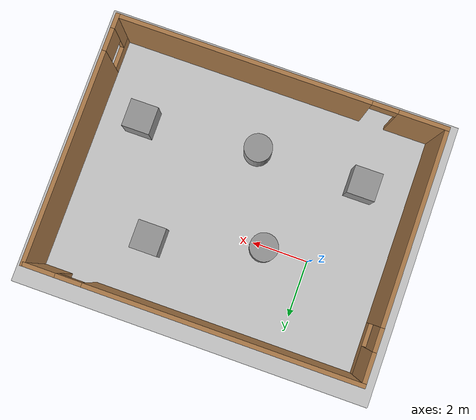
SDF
<sdf version="1.7">
 <world name="default">
  <light name="sun" type="directional">
   <pose>0 0 10 0 -0 0</pose>
   <diffuse>0.8 0.8 0.8 1</diffuse>
   <specular>0.2 0.2 0.2 1</specular>
   <attenuation>
    <range>1000</range>
    <constant>0.9</constant>
    <linear>0.01</linear>
    <quadratic>0.001</quadratic>
   </attenuation>
   <direction>-0.5 0.1 -0.9</direction>
   <spot><inner_angle>0</inner_angle><outer_angle>0</outer_angle><falloff>0</falloff></spot>
  </light>
  <model name="ground_plane">
   <static>1</static>
   <link name="link">
    <collision name="collision">
     <geometry><plane><normal>0 0 1</normal><size>100 100</size></plane></geometry>
     <surface>
      <contact><collide_bitmask>65535</collide_bitmask></contact>
      <friction><ode><mu>100</mu><mu2>50</mu2></ode></friction>
     </surface>
    </collision>
    <visual name="visual">
     <cast_shadows>0</cast_shadows>
     <geometry><plane><normal>0 0 1</normal><size>100 100</size></plane></geometry>
     <material>
      <script><uri>file://media/materials/scripts/gazebo.material</uri><name>Gazebo/Grey</name></script>
     </material>
    </visual>
   </link>
  </model>
  <gravity>0 0 -9.8</gravity>
  <magnetic_field>6e-06 2.3e-05 -4.2e-05</magnetic_field>
  <atmosphere type="adiabatic"/>
  <physics type="ode">
   <max_step_size>0.001</max_step_size>
   <real_time_factor>1</real_time_factor>
   <real_time_update_rate>1000</real_time_update_rate>
  </physics>
  <scene><ambient>0.4 0.4 0.4 1</ambient><background>0.7 0.7 0.7 1</background><shadows>1</shadows></scene>
  <spherical_coordinates>
   <surface_model>EARTH_WGS84</surface_model>
   <latitude_deg>0</latitude_deg>
   <longitude_deg>0</longitude_deg>
   <elevation>0</elevation>
   <heading_deg>0</heading_deg>
  </spherical_coordinates>
  <model name="house">
   <pose>2.975 -1.12 0 0 -0 0</pose>
   <link name="Wall_0">
    <pose>-5.675 -0 0 0 -0 1.5708</pose>
    <visual name="Wall_0_Visual_0">
     <pose>-0.979064 0 1.25 0 -0 0</pose>
     <geometry><box><size>6.79187 0.15 2.5</size></box></geometry>
     <material>
      <script><uri>file://media/materials/scripts/gazebo.material</uri><name>Gazebo/Wood</name></script>
      <ambient>1 1 1 1</ambient>
     </material>
     <meta><layer>0</layer></meta>
    </visual>
    <collision name="Wall_0_Collision_0">
     <geometry><box><size>6.79187 0.15 2.5</size></box></geometry>
     <pose>-0.979064 0 1.25 0 -0 0</pose>
    </collision>
    <visual name="Wall_0_Visual_1">
     <pose>3.39594 0 0.25 0 -0 0</pose>
     <geometry><box><size>1.95813 0.15 0.5</size></box></geometry>
     <material>
      <script><uri>file://media/materials/scripts/gazebo.material</uri><name>Gazebo/Wood</name></script>
      <ambient>1 1 1 1</ambient>
     </material>
     <meta><layer>0</layer></meta>
    </visual>
    <collision name="Wall_0_Collision_1">
     <geometry><box><size>1.95813 0.15 0.5</size></box></geometry>
     <pose>3.39594 0 0.25 0 -0 0</pose>
    </collision>
    <visual name="Wall_0_Visual_2">
     <pose>3.79594 0 1.5 0 -0 0</pose>
     <geometry><box><size>1.15813 0.15 2</size></box></geometry>
     <material>
      <script><uri>file://media/materials/scripts/gazebo.material</uri><name>Gazebo/Wood</name></script>
      <ambient>1 1 1 1</ambient>
     </material>
     <meta><layer>0</layer></meta>
    </visual>
    <collision name="Wall_0_Collision_2">
     <geometry><box><size>1.15813 0.15 2</size></box></geometry>
     <pose>3.79594 0 1.5 0 -0 0</pose>
    </collision>
    <visual name="Wall_0_Visual_3">
     <pose>2.81687 0 1.9 0 -0 0</pose>
     <geometry><box><size>0.8 0.15 1.2</size></box></geometry>
     <material>
      <script><uri>file://media/materials/scripts/gazebo.material</uri><name>Gazebo/Wood</name></script>
      <ambient>1 1 1 1</ambient>
     </material>
     <meta><layer>0</layer></meta>
    </visual>
    <collision name="Wall_0_Collision_3">
     <geometry><box><size>0.8 0.15 1.2</size></box></geometry>
     <pose>2.81687 0 1.9 0 -0 0</pose>
    </collision>
   </link>
   <link name="Wall_1">
    <pose>0 4.3 0 0 -0 0</pose>
    <visual name="Wall_1_Visual_0">
     <pose>-1.03034 0 1.25 0 -0 0</pose>
     <geometry><box><size>9.43931 0.15 2.5</size></box></geometry>
     <material>
      <script><uri>file://media/materials/scripts/gazebo.material</uri><name>Gazebo/Wood</name></script>
      <ambient>1 1 1 1</ambient>
     </material>
     <meta><layer>0</layer></meta>
    </visual>
    <collision name="Wall_1_Collision_0">
     <geometry><box><size>9.43931 0.15 2.5</size></box></geometry>
     <pose>-1.03034 0 1.25 0 -0 0</pose>
    </collision>
    <visual name="Wall_1_Visual_1">
     <pose>5.16966 0 1.25 0 -0 0</pose>
     <geometry><box><size>1.16069 0.15 2.5</size></box></geometry>
     <material>
      <script><uri>file://media/materials/scripts/gazebo.material</uri><name>Gazebo/Wood</name></script>
      <ambient>1 1 1 1</ambient>
     </material>
     <meta><layer>0</layer></meta>
    </visual>
    <collision name="Wall_1_Collision_1">
     <geometry><box><size>1.16069 0.15 2.5</size></box></geometry>
     <pose>5.16966 0 1.25 0 -0 0</pose>
    </collision>
    <visual name="Wall_1_Visual_2">
     <pose>4.13931 0 2.25 0 -0 0</pose>
     <geometry><box><size>0.9 0.15 0.5</size></box></geometry>
     <material>
      <script><uri>file://media/materials/scripts/gazebo.material</uri><name>Gazebo/Wood</name></script>
      <ambient>1 1 1 1</ambient>
     </material>
     <meta><layer>0</layer></meta>
    </visual>
    <collision name="Wall_1_Collision_2">
     <geometry><box><size>0.9 0.15 0.5</size></box></geometry>
     <pose>4.13931 0 2.25 0 -0 0</pose>
    </collision>
   </link>
   <link name="Wall_2">
    <pose>5.675 -0 0 0 -0 -1.5708</pose>
    <visual name="Wall_2_Visual_0">
     <pose>-0.666158 0 1.25 0 -0 0</pose>
     <geometry><box><size>7.41768 0.15 2.5</size></box></geometry>
     <material>
      <script><uri>file://media/materials/scripts/gazebo.material</uri><name>Gazebo/Wood</name></script>
      <ambient>1 1 1 1</ambient>
     </material>
     <meta><layer>0</layer></meta>
    </visual>
    <collision name="Wall_2_Collision_0">
     <geometry><box><size>7.41768 0.15 2.5</size></box></geometry>
     <pose>-0.666158 0 1.25 0 -0 0</pose>
    </collision>
    <visual name="Wall_2_Visual_1">
     <pose>3.70884 0 0.25 0 -0 0</pose>
     <geometry><box><size>1.33232 0.15 0.5</size></box></geometry>
     <material>
      <script><uri>file://media/materials/scripts/gazebo.material</uri><name>Gazebo/Wood</name></script>
      <ambient>1 1 1 1</ambient>
     </material>
     <meta><layer>0</layer></meta>
    </visual>
    <collision name="Wall_2_Collision_1">
     <geometry><box><size>1.33232 0.15 0.5</size></box></geometry>
     <pose>3.70884 0 0.25 0 -0 0</pose>
    </collision>
    <visual name="Wall_2_Visual_2">
     <pose>4.10884 0 1.5 0 -0 0</pose>
     <geometry><box><size>0.532317 0.15 2</size></box></geometry>
     <material>
      <script><uri>file://media/materials/scripts/gazebo.material</uri><name>Gazebo/Wood</name></script>
      <ambient>1 1 1 1</ambient>
     </material>
     <meta><layer>0</layer></meta>
    </visual>
    <collision name="Wall_2_Collision_2">
     <geometry><box><size>0.532317 0.15 2</size></box></geometry>
     <pose>4.10884 0 1.5 0 -0 0</pose>
    </collision>
    <visual name="Wall_2_Visual_3">
     <pose>3.44268 0 1.9 0 -0 0</pose>
     <geometry><box><size>0.8 0.15 1.2</size></box></geometry>
     <material>
      <script><uri>file://media/materials/scripts/gazebo.material</uri><name>Gazebo/Wood</name></script>
      <ambient>1 1 1 1</ambient>
     </material>
     <meta><layer>0</layer></meta>
    </visual>
    <collision name="Wall_2_Collision_3">
     <geometry><box><size>0.8 0.15 1.2</size></box></geometry>
     <pose>3.44268 0 1.9 0 -0 0</pose>
    </collision>
   </link>
   <link name="Wall_3">
    <pose>0 -4.3 0 0 -0 3.14159</pose>
    <visual name="Wall_3_Visual_0">
     <pose>-1.31661 0 1.25 0 -0 0</pose>
     <geometry><box><size>8.86678 0.15 2.5</size></box></geometry>
     <material>
      <script><uri>file://media/materials/scripts/gazebo.material</uri><name>Gazebo/Wood</name></script>
      <ambient>1 1 1 1</ambient>
     </material>
     <meta><layer>0</layer></meta>
    </visual>
    <collision name="Wall_3_Collision_0">
     <geometry><box><size>8.86678 0.15 2.5</size></box></geometry>
     <pose>-1.31661 0 1.25 0 -0 0</pose>
    </collision>
    <visual name="Wall_3_Visual_1">
     <pose>4.88339 0 1.25 0 -0 0</pose>
     <geometry><box><size>1.73322 0.15 2.5</size></box></geometry>
     <material>
      <script><uri>file://media/materials/scripts/gazebo.material</uri><name>Gazebo/Wood</name></script>
      <ambient>1 1 1 1</ambient>
     </material>
     <meta><layer>0</layer></meta>
    </visual>
    <collision name="Wall_3_Collision_1">
     <geometry><box><size>1.73322 0.15 2.5</size></box></geometry>
     <pose>4.88339 0 1.25 0 -0 0</pose>
    </collision>
    <visual name="Wall_3_Visual_2">
     <pose>3.56678 0 2.25 0 -0 0</pose>
     <geometry><box><size>0.9 0.15 0.5</size></box></geometry>
     <material>
      <script><uri>file://media/materials/scripts/gazebo.material</uri><name>Gazebo/Wood</name></script>
      <ambient>1 1 1 1</ambient>
     </material>
     <meta><layer>0</layer></meta>
    </visual>
    <collision name="Wall_3_Collision_2">
     <geometry><box><size>0.9 0.15 0.5</size></box></geometry>
     <pose>3.56678 0 2.25 0 -0 0</pose>
    </collision>
   </link>
   <static>1</static>
  </model>
  <model name="unit_cylinder">
   <pose>1.59911 0.068934 0.499992 -3e-06 -4e-06 -0</pose>
   <link name="link">
    <inertial>
     <mass>1</mass>
     <inertia><ixx>0.145833</ixx><ixy>0</ixy><ixz>0</ixz><iyy>0.145833</iyy><iyz>0</iyz><izz>0.125</izz></inertia>
    </inertial>
    <collision name="collision">
     <geometry><cylinder><radius>0.5</radius><length>1</length></cylinder></geometry>
    </collision>
    <visual name="visual">
     <geometry><cylinder><radius>0.5</radius><length>1</length></cylinder></geometry>
     <material>
      <script><name>Gazebo/Grey</name><uri>file://media/materials/scripts/gazebo.material</uri></script>
     </material>
    </visual>
   </link>
  </model>
  <model name="unit_box">
   <pose>-0.927737 -3.12399 0.499995 -1e-05 -0 -0</pose>
   <link name="link">
    <inertial>
     <mass>1</mass>
     <inertia>
      <ixx>0.166667</ixx>
      <ixy>0</ixy>
      <ixz>0</ixz>
      <iyy>0.166667</iyy>
      <iyz>0</iyz>
      <izz>0.166667</izz>
     </inertia>
    </inertial>
    <collision name="collision"><geometry><box><size>1 1 1</size></box></geometry></collision>
    <visual name="visual">
     <geometry><box><size>1 1 1</size></box></geometry>
     <material>
      <script><name>Gazebo/Grey</name><uri>file://media/materials/scripts/gazebo.material</uri></script>
     </material>
    </visual>
   </link>
  </model>
  <model name="unit_cylinder_0">
   <pose>2.90106 -3.07338 0.499997 3e-06 4e-06 -0</pose>
   <link name="link">
    <inertial>
     <mass>1</mass>
     <inertia><ixx>0.145833</ixx><ixy>0</ixy><ixz>0</ixz><iyy>0.145833</iyy><iyz>0</iyz><izz>0.125</izz></inertia>
    </inertial>
    <collision name="collision">
     <geometry><cylinder><radius>0.5</radius><length>1</length></cylinder></geometry>
    </collision>
    <visual name="visual">
     <geometry><cylinder><radius>0.5</radius><length>1</length></cylinder></geometry>
     <material>
      <script><name>Gazebo/Grey</name><uri>file://media/materials/scripts/gazebo.material</uri></script>
     </material>
    </visual>
   </link>
  </model>
  <model name="unit_box_0">
   <pose>5.40914 1.07754 0.499995 -1e-05 -0 0</pose>
   <link name="link">
    <inertial>
     <mass>1</mass>
     <inertia>
      <ixx>0.166667</ixx>
      <ixy>0</ixy>
      <ixz>0</ixz>
      <iyy>0.166667</iyy>
      <iyz>0</iyz>
      <izz>0.166667</izz>
     </inertia>
    </inertial>
    <collision name="collision"><geometry><box><size>1 1 1</size></box></geometry></collision>
    <visual name="visual">
     <geometry><box><size>1 1 1</size></box></geometry>
     <material>
      <script><name>Gazebo/Grey</name><uri>file://media/materials/scripts/gazebo.material</uri></script>
     </material>
    </visual>
   </link>
  </model>
  <model name="unit_box_1">
   <pose>7.08974 -2.74943 0.5 0 -0 0</pose>
   <link name="link">
    <inertial>
     <mass>1</mass>
     <inertia>
      <ixx>0.166667</ixx>
      <ixy>0</ixy>
      <ixz>0</ixz>
      <iyy>0.166667</iyy>
      <iyz>0</iyz>
      <izz>0.166667</izz>
     </inertia>
    </inertial>
    <collision name="collision"><geometry><box><size>1 1 1</size></box></geometry></collision>
    <visual name="visual">
     <geometry><box><size>1 1 1</size></box></geometry>
     <material>
      <script><name>Gazebo/Grey</name><uri>file://media/materials/scripts/gazebo.material</uri></script>
     </material>
    </visual>
   </link>
  </model>
 </world>
</sdf>
